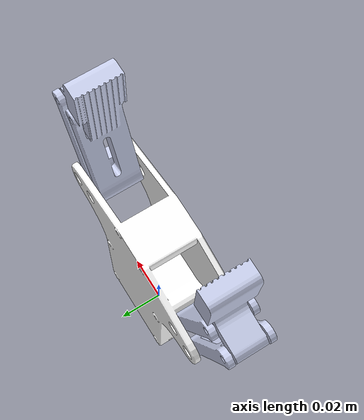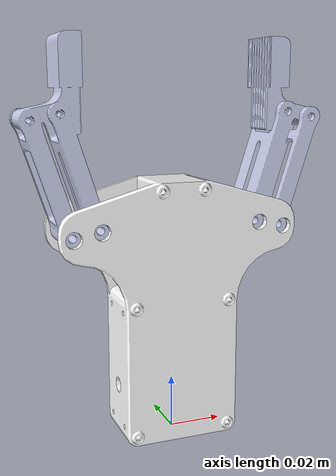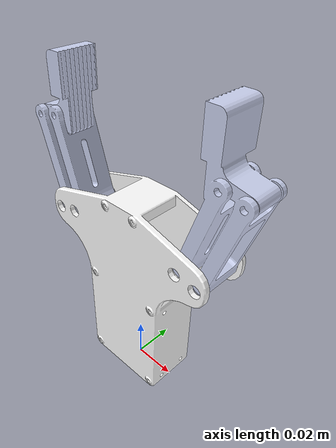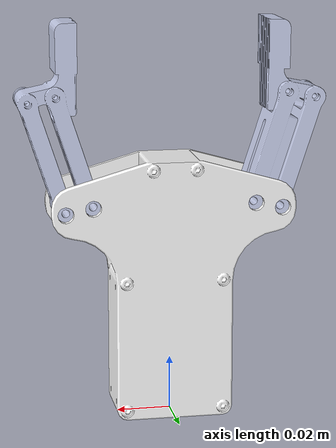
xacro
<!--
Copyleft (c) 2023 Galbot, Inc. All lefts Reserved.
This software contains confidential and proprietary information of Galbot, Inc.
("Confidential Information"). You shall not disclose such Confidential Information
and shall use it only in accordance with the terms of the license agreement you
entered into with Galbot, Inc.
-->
<?xml version="1.0"?>
<robot name="test_gripper" xmlns:xacro="http://ros.org/wiki/xacro">
    <!-- Include-->
    <xacro:include filename="$(find galbot_description)/urdf/gripper/gripper_inspire.xacro" />
    <!-- Properties -->
    <xacro:property name="M_PI" value="3.1415926535897931" />
    <!-- Parent link -->
    <link name="base_link" />
    <xacro:gripper_inspire parent="base_link">
        <origin xyz="0 0 0" rpy="0 0 0" />
    </xacro:gripper_inspire>
</robot>

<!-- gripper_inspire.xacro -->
<robot name="gripper_inspire" xmlns:xacro="http://ros.org/wiki/xacro">

    <xacro:macro name="gripper_inspire" params="parent *origin  name:=gripper_inspire">
        <xacro:property name="M_PI" value="3.1415926535897931" />

        <joint name="${name}_joint" type="fixed">
            <xacro:insert_block name="origin" />
            <parent link="${parent}" />
            <child link="${name}_body_link" />
        </joint>

        <link name="${name}_body_link">
            <inertial>
                <origin rpy="0 0 0" xyz="1.5645E-05 -4.1843E-06 0.038" />
                <mass value="0.072633" />
                <inertia ixx="5.095E-05" ixy="-4.256E-14" ixz="2.0229E-08" iyy="6.0883E-05"
                    iyz="-4.5583E-09" izz="1.933E-05" />
            </inertial>
            <visual>
                <origin rpy="0 0 0" xyz="0 0 0" />
                <geometry>
                    <mesh
                        filename="package://galbot_description/meshes/gripper/gripper_inspire_body_link.stl" />
                </geometry>
                <material name="">
                    <color rgba="1 1 1 1" />
                </material>
            </visual>
            <collision>
                <origin rpy="0 0 0" xyz="0 0 0" />
                <geometry>
                    <mesh
                        filename="package://galbot_description/meshes/gripper/gripper_inspire_body_link.stl" />
                </geometry>
            </collision>
        </link>
        <link name="${name}_left_link_1">
            <inertial>
                <origin rpy="0 0 0" xyz="-0.018807 -0.0090021 -0.0046901" />
                <mass value="0.010721" />
                <inertia ixx="5.1508E-07" ixy="1.2231E-10" ixz="2.8973E-07" iyy="1.5709E-06"
                    iyz="7.2401E-11" izz="1.6904E-06" />
            </inertial>
            <visual>
                <origin rpy="0 0 0" xyz="0 0 0" />
                <geometry>
                    <mesh
                        filename="package://galbot_description/meshes/gripper/gripper_inspire_left_link_1.stl" />
                </geometry>
                <material name="">
                    <color rgba="0.79216 0.81961 0.93333 1" />
                </material>
            </visual>
            <collision>
                <origin rpy="0 0 0" xyz="0 0 0" />
                <geometry>
                    <mesh
                        filename="package://galbot_description/meshes/gripper/gripper_inspire_left_link_1.stl" />
                </geometry>
            </collision>
        </link>
        <joint name="${name}_left_joint_1" type="prismatic">
            <origin rpy="${M_PI} ${-M_PI/2} 0" xyz="-0.034907 -0.009 0.12953" />
            <parent link="${name}_body_link" />
            <child link="${name}_left_link_1" />
            <axis xyz="-0.00597 0 -0.99998" />
            <limit effort="0" lower="-0.035" upper="0" velocity="0" />
        </joint>
        <link name="${name}_right_link_1">
            <inertial>
                <origin rpy="0 0 0" xyz="-0.018807 0.0089979 -0.0046901" />
                <mass value="0.010721" />
                <inertia ixx="5.1508E-07" ixy="1.2231E-10" ixz="2.8973E-07" iyy="1.5709E-06"
                    iyz="7.2401E-11" izz="1.6904E-06" />
            </inertial>
            <visual>
                <origin rpy="0 0 0" xyz="0 0 0" />
                <geometry>
                    <mesh
                        filename="package://galbot_description/meshes/gripper/gripper_inspire_right_link_1.stl" />
                </geometry>
                <material name="">
                    <color rgba="0.79216 0.81961 0.93333 1" />
                </material>
            </visual>
            <collision>
                <origin rpy="0 0 0" xyz="0 0 0" />
                <geometry>
                    <mesh
                        filename="package://galbot_description/meshes/gripper/gripper_inspire_right_link_1.stl" />
                </geometry>
            </collision>
        </link>
        <joint name="${name}_right_joint_1" type="prismatic">
            <origin rpy="${M_PI} ${-M_PI/2} ${M_PI}" xyz="0.034907 -0.009 0.12953" />
            <parent link="${name}_body_link" />
            <child link="${name}_right_link_1" />
            <axis xyz="0.00597 0 0.99998" />
            <limit effort="0" lower="0" upper="0.035" velocity="0" />
            <!-- mimic not supported in isaac sim 2023.1.0-hotfix  -->
        </joint>

        <!-- Tool Center Point -->
        <link name="${name}_tcp_frame" />
        <joint name="tcp_joint" type="fixed">
            <origin rpy="${-M_PI/2} ${-M_PI/2} 0" xyz="0 0 0.13751" />
            <parent link="${name}_body_link" />
            <child link="${name}_tcp_frame" />
            <axis xyz="0 0 0" />
        </joint>
    </xacro:macro>
</robot>
